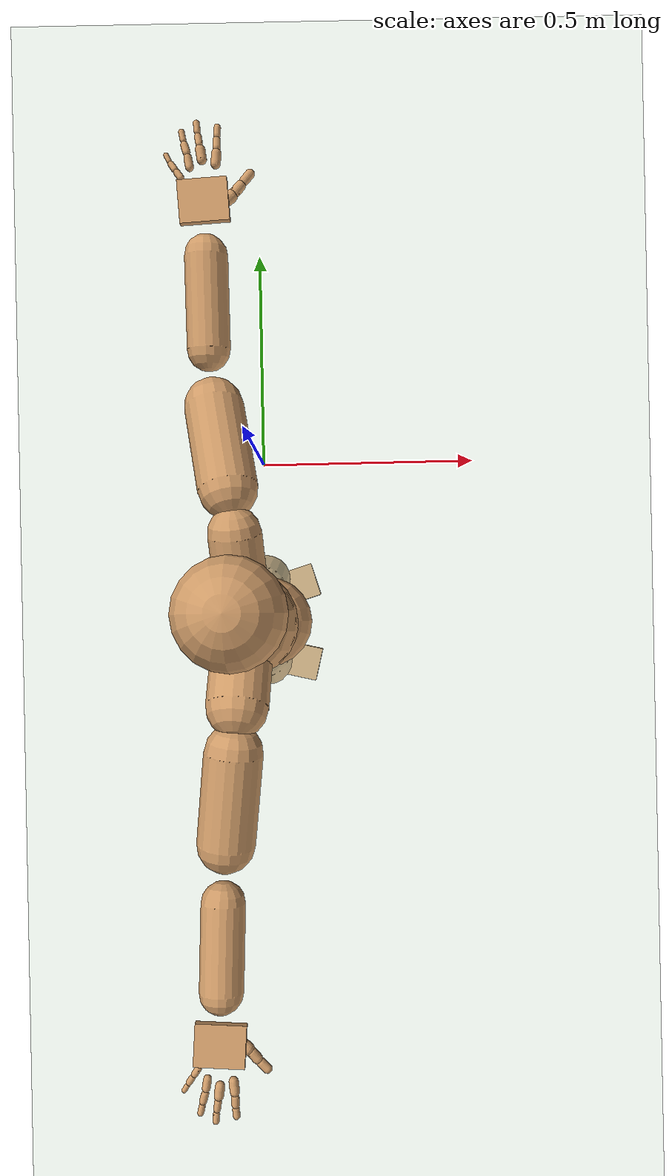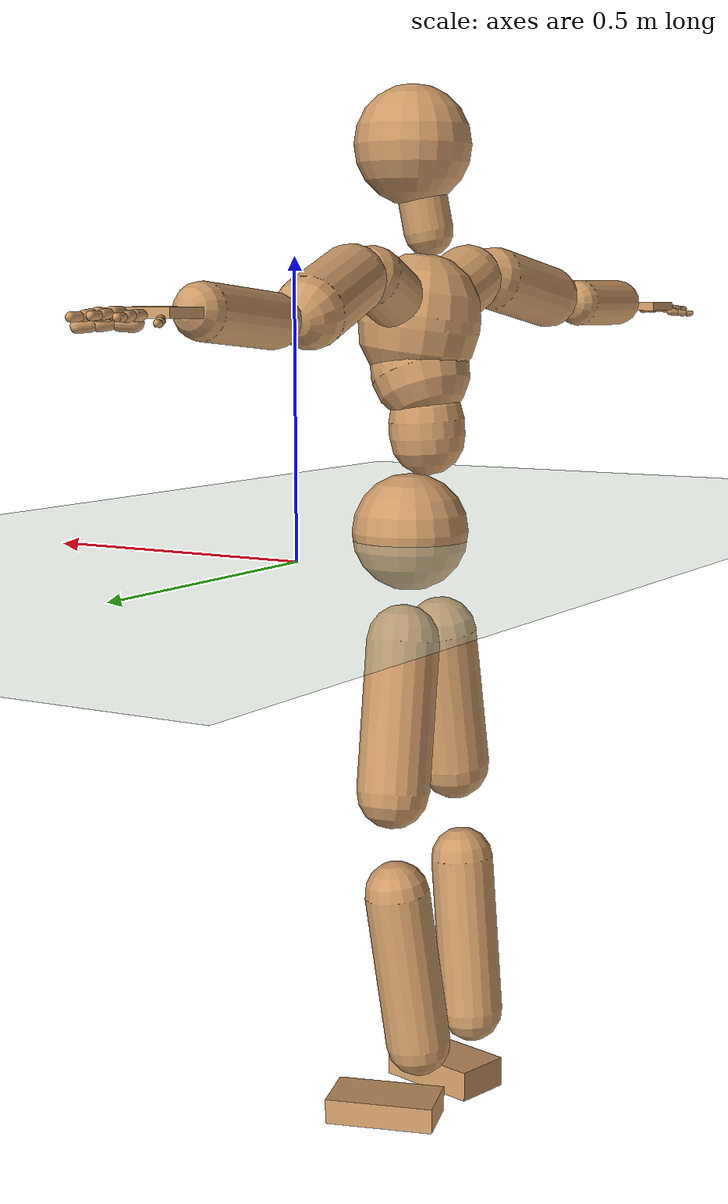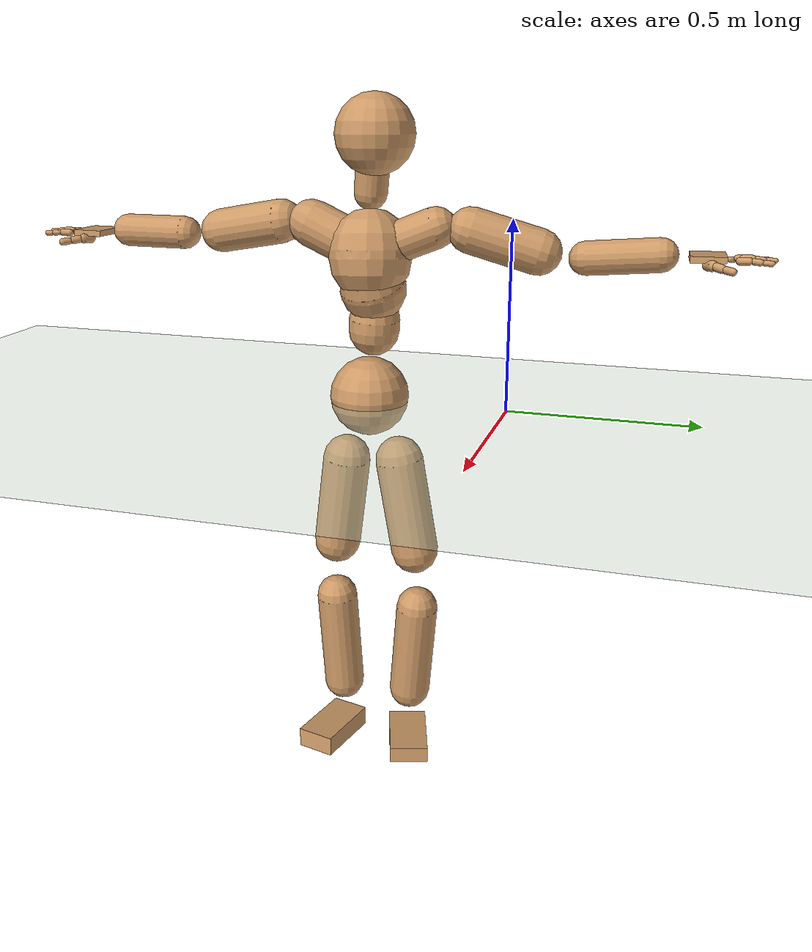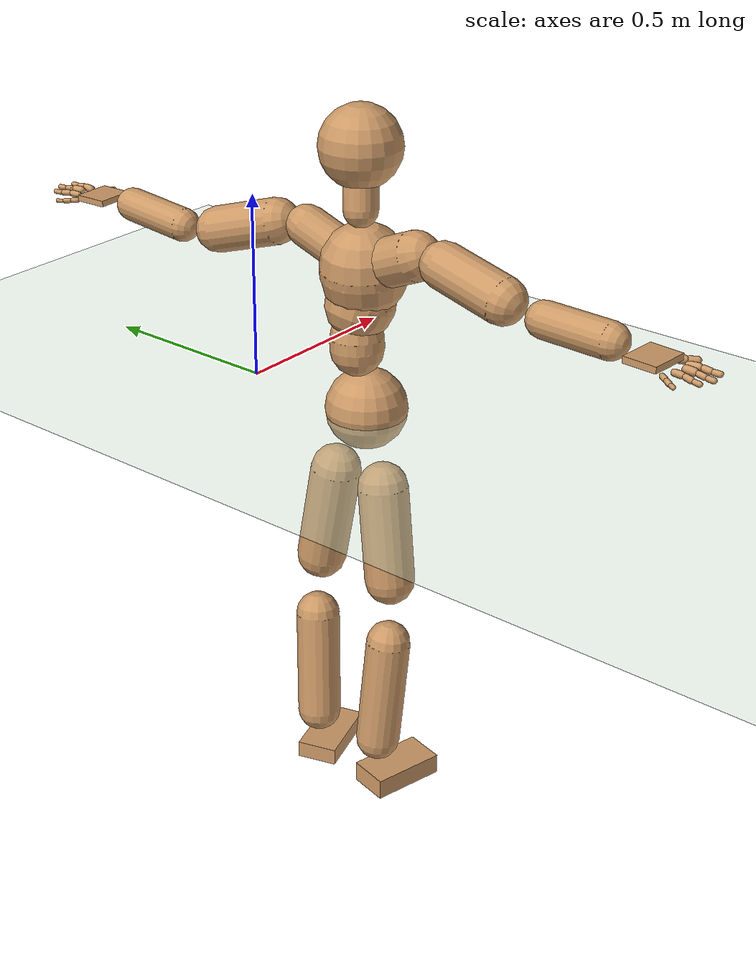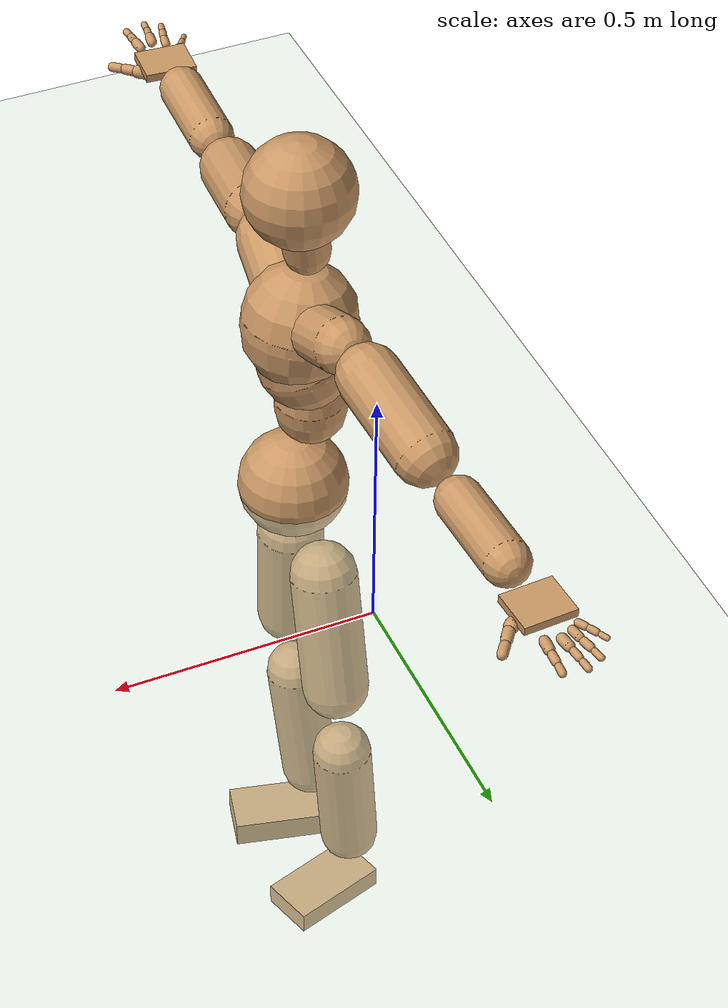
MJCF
<mujoco model="humanoid">
  <compiler coordinate="local" angle="radian"/>
  <default>
    <joint damping="0.0" armature="0.01" stiffness="0.0" limited="true"/>
    <geom conaffinity="1" condim="3" contype="7" margin="0.001" rgba="0.8 0.6 .4 1"/>
  </default>
  <asset>
    <texture type="skybox" builtin="gradient" rgb1=".4 .5 .6" rgb2="0 0 0" width="100" height="100"/>
    <texture builtin="flat" height="1278" mark="cross" markrgb="1 1 1" name="texgeom" random="0.01" rgb1="0.8 0.6 0.4" rgb2="0.8 0.6 0.4" type="cube" width="127"/>
    <texture builtin="checker" height="100" name="texplane" rgb1="0 0 0" rgb2="0.8 0.8 0.8" type="2d" width="100"/>
    <material name="MatPlane" reflectance="0.5" shininess="1" specular="1" texrepeat="60 60" texture="texplane"/>
    <material name="geom" texture="texgeom" texuniform="true"/>
  </asset>
  <worldbody>
    <light cutoff="100" diffuse="1 1 1" dir="-0 0 -1.3" directional="true" exponent="1" pos="0 0 1.3" specular=".1 .1 .1"/>
    <geom conaffinity="1" condim="3" name="floor" pos="0 0 0" rgba="0.8 0.9 0.8 1" size="100 100 .2" type="plane" material="MatPlane"/>
    <body name="Pelvis" pos="0.0011 -0.378 0.0125">
      <freejoint name="Pelvis"/>
      <geom type="sphere" contype="1" conaffinity="1" density="500" size="0.1073" pos="0.0000 0.0000 0.0000" name="Pelvis"/>
      <body name="L_Hip" pos="-0.0278 0.0618 -0.0978">
        <joint name="L_Hip_x" type="hinge" pos="0 0 0" axis="1 0 0" stiffness="800" damping="80" armature="0.02" range="-180.0000 180.0000"/>
        <joint name="L_Hip_y" type="hinge" pos="0 0 0" axis="0 1 0" stiffness="800" damping="80" armature="0.02" range="-180.0000 180.0000"/>
        <joint name="L_Hip_z" type="hinge" pos="0 0 0" axis="0 0 1" stiffness="800" damping="80" armature="0.02" range="-180.0000 180.0000"/>
        <geom type="capsule" contype="1" conaffinity="1" density="500" fromto="-0.0020 0.0152 -0.0900 -0.0082 0.0609 -0.3600" size="0.0663" name="L_Hip"/>
        <body name="L_Knee" pos="-0.0102 0.0761 -0.45">
          <joint name="L_Knee_x" type="hinge" pos="0 0 0" axis="1 0 0" stiffness="800" damping="80" armature="0.02" range="-180.0000 180.0000"/>
          <joint name="L_Knee_y" type="hinge" pos="0 0 0" axis="0 1 0" stiffness="800" damping="80" armature="0.02" range="-180.0000 180.0000"/>
          <joint name="L_Knee_z" type="hinge" pos="0 0 0" axis="0 0 1" stiffness="800" damping="80" armature="0.02" range="-180.0000 180.0000"/>
          <geom type="capsule" contype="1" conaffinity="1" density="500" fromto="-0.0098 -0.0093 -0.0961 -0.0392 -0.0373 -0.3843" size="0.0592" name="L_Knee"/>
          <body name="L_Ankle" pos="-0.049 -0.0466 -0.4803">
            <joint name="L_Ankle_x" type="hinge" pos="0 0 0" axis="1 0 0" stiffness="800" damping="80" armature="0.02" range="-180.0000 180.0000"/>
            <joint name="L_Ankle_y" type="hinge" pos="0 0 0" axis="0 1 0" stiffness="800" damping="80" armature="0.02" range="-180.0000 180.0000"/>
            <joint name="L_Ankle_z" type="hinge" pos="0 0 0" axis="0 0 1" stiffness="800" damping="80" armature="0.02" range="-180.0000 180.0000"/>
            <geom type="box" contype="1" conaffinity="1" density="500" pos="0.0733 0.0227 -0.0345" size="0.1006 0.0546 0.0232" quat="0.9888 0.0000 0.0000 0.1495" name="L_Ankle"/>
            <body name="L_Toe" pos="0.1467 0.0454 -0.0691">
              <joint name="L_Toe_x" type="hinge" pos="0 0 0" axis="1 0 0" stiffness="500" damping="50" armature="0.02" range="-180.0000 180.0000"/>
              <joint name="L_Toe_y" type="hinge" pos="0 0 0" axis="0 1 0" stiffness="500" damping="50" armature="0.02" range="-180.0000 180.0000"/>
              <joint name="L_Toe_z" type="hinge" pos="0 0 0" axis="0 0 1" stiffness="500" damping="50" armature="0.02" range="-180.0000 180.0000"/>
              <geom type="box" contype="1" conaffinity="1" density="500" pos="0.0000 0.0000 0.0336" size="0.0011 0.0026 0.0011" quat="0.9881 0.0000 0.0000 0.1537" name="L_Toe"/>
            </body>
          </body>
        </body>
      </body>
      <body name="R_Hip" pos="-0.02 -0.0635 -0.1083">
        <joint name="R_Hip_x" type="hinge" pos="0 0 0" axis="1 0 0" stiffness="800" damping="80" armature="0.02" range="-180.0000 180.0000"/>
        <joint name="R_Hip_y" type="hinge" pos="0 0 0" axis="0 1 0" stiffness="800" damping="80" armature="0.02" range="-180.0000 180.0000"/>
        <joint name="R_Hip_z" type="hinge" pos="0 0 0" axis="0 0 1" stiffness="800" damping="80" armature="0.02" range="-180.0000 180.0000"/>
        <geom type="capsule" contype="1" conaffinity="1" density="500" fromto="-0.0037 -0.0116 -0.0863 -0.0149 -0.0463 -0.3453" size="0.066" name="R_Hip"/>
        <body name="R_Knee" pos="-0.0186 -0.0579 -0.4317">
          <joint name="R_Knee_x" type="hinge" pos="0 0 0" axis="1 0 0" stiffness="800" damping="80" armature="0.02" range="-180.0000 180.0000"/>
          <joint name="R_Knee_y" type="hinge" pos="0 0 0" axis="0 1 0" stiffness="800" damping="80" armature="0.02" range="-180.0000 180.0000"/>
          <joint name="R_Knee_z" type="hinge" pos="0 0 0" axis="0 0 1" stiffness="800" damping="80" armature="0.02" range="-180.0000 180.0000"/>
          <geom type="capsule" contype="1" conaffinity="1" density="500" fromto="-0.0095 0.0033 -0.0992 -0.0381 0.0134 -0.3969" size="0.0589" name="R_Knee"/>
          <body name="R_Ankle" pos="-0.0476 0.0167 -0.4962">
            <joint name="R_Ankle_x" type="hinge" pos="0 0 0" axis="1 0 0" stiffness="800" damping="80" armature="0.02" range="-180.0000 180.0000"/>
            <joint name="R_Ankle_y" type="hinge" pos="0 0 0" axis="0 1 0" stiffness="800" damping="80" armature="0.02" range="-180.0000 180.0000"/>
            <joint name="R_Ankle_z" type="hinge" pos="0 0 0" axis="0 0 1" stiffness="800" damping="80" armature="0.02" range="-180.0000 180.0000"/>
            <geom type="box" contype="1" conaffinity="1" density="500" pos="0.0767 -0.0182 -0.0338" size="0.1006 0.0546 0.0282" quat="0.9932 0.0000 0.0000 -0.1162" name="R_Ankle"/>
            <body name="R_Toe" pos="0.1534 -0.0364 -0.0676">
              <joint name="R_Toe_x" type="hinge" pos="0 0 0" axis="1 0 0" stiffness="500" damping="50" armature="0.02" range="-180.0000 180.0000"/>
              <joint name="R_Toe_y" type="hinge" pos="0 0 0" axis="0 1 0" stiffness="500" damping="50" armature="0.02" range="-180.0000 180.0000"/>
              <joint name="R_Toe_z" type="hinge" pos="0 0 0" axis="0 0 1" stiffness="500" damping="50" armature="0.02" range="-180.0000 180.0000"/>
              <geom type="box" contype="1" conaffinity="1" density="500" pos="0.0000 0.0000 0.0279" size="0.001 0.0026 0.0011" quat="0.9941 0.0000 0.0000 -0.1086" name="R_Toe"/>
            </body>
          </body>
        </body>
      </body>
      <body name="Torso" pos="-0.039 -0.0015 0.1143">
        <joint name="Torso_x" type="hinge" pos="0 0 0" axis="1 0 0" stiffness="1000" damping="100" armature="0.02" range="-180.0000 180.0000"/>
        <joint name="Torso_y" type="hinge" pos="0 0 0" axis="0 1 0" stiffness="1000" damping="100" armature="0.02" range="-180.0000 180.0000"/>
        <joint name="Torso_z" type="hinge" pos="0 0 0" axis="0 0 1" stiffness="1000" damping="100" armature="0.02" range="-180.0000 180.0000"/>
        <geom type="capsule" contype="1" conaffinity="1" density="500" fromto="0.0038 0.0052 0.0907 0.0026 0.0035 0.0605" size="0.069" name="Torso"/>
        <body name="Spine" pos="0.0064 0.0087 0.1512">
          <joint name="Spine_x" type="hinge" pos="0 0 0" axis="1 0 0" stiffness="1000" damping="100" armature="0.02" range="-180.0000 180.0000"/>
          <joint name="Spine_y" type="hinge" pos="0 0 0" axis="0 1 0" stiffness="1000" damping="100" armature="0.02" range="-180.0000 180.0000"/>
          <joint name="Spine_z" type="hinge" pos="0 0 0" axis="0 0 1" stiffness="1000" damping="100" armature="0.02" range="-180.0000 180.0000"/>
          <geom type="capsule" contype="1" conaffinity="1" density="500" fromto="0.0135 -0.0045 0.0353 0.0090 -0.0030 0.0235" size="0.0892" name="Spine"/>
          <body name="Chest" pos="0.0226 -0.0075 0.0588">
            <joint name="Chest_x" type="hinge" pos="0 0 0" axis="1 0 0" stiffness="1000" damping="100" armature="0.02" range="-180.0000 180.0000"/>
            <joint name="Chest_y" type="hinge" pos="0 0 0" axis="0 1 0" stiffness="1000" damping="100" armature="0.02" range="-180.0000 180.0000"/>
            <joint name="Chest_z" type="hinge" pos="0 0 0" axis="0 0 1" stiffness="1000" damping="100" armature="0.02" range="-180.0000 180.0000"/>
            <geom type="capsule" contype="1" conaffinity="1" density="500" fromto="-0.0084 -0.0026 0.0679 -0.0056 -0.0017 0.0453" size="0.1105" name="Chest"/>
            <body name="Neck" pos="-0.0285 -0.0099 0.1773">
              <joint name="Neck_x" type="hinge" pos="0 0 0" axis="1 0 0" stiffness="500" damping="50" armature="0.02" range="-180.0000 180.0000"/>
              <joint name="Neck_y" type="hinge" pos="0 0 0" axis="0 1 0" stiffness="500" damping="50" armature="0.02" range="-180.0000 180.0000"/>
              <joint name="Neck_z" type="hinge" pos="0 0 0" axis="0 0 1" stiffness="500" damping="50" armature="0.02" range="-180.0000 180.0000"/>
              <geom type="capsule" contype="1" conaffinity="1" density="500" fromto="0.0054 0.0046 0.0372 0.0214 0.0185 0.1489" size="0.0443" name="Neck"/>
              <body name="Head" pos="0.0268 0.0231 0.1861">
                <joint name="Head_x" type="hinge" pos="0 0 0" axis="1 0 0" stiffness="500" damping="50" armature="0.02" range="-180.0000 180.0000"/>
                <joint name="Head_y" type="hinge" pos="0 0 0" axis="0 1 0" stiffness="500" damping="50" armature="0.02" range="-180.0000 180.0000"/>
                <joint name="Head_z" type="hinge" pos="0 0 0" axis="0 0 1" stiffness="500" damping="50" armature="0.02" range="-180.0000 180.0000"/>
                <geom type="sphere" contype="1" conaffinity="1" density="500" size="0.1050" pos="0.0000 0.0000 0.0000" name="Head"/>
              </body>
            </body>
            <body name="L_Thorax" pos="-0.0052 0.0463 0.0812">
              <joint name="L_Thorax_x" type="hinge" pos="0 0 0" axis="1 0 0" stiffness="500" damping="50" armature="0.02" range="-180.0000 180.0000"/>
              <joint name="L_Thorax_y" type="hinge" pos="0 0 0" axis="0 1 0" stiffness="500" damping="50" armature="0.02" range="-180.0000 180.0000"/>
              <joint name="L_Thorax_z" type="hinge" pos="0 0 0" axis="0 0 1" stiffness="500" damping="50" armature="0.02" range="-180.0000 180.0000"/>
              <geom type="capsule" contype="1" conaffinity="1" density="500" fromto="-0.0022 0.0318 0.0127 -0.0089 0.1271 0.0510" size="0.0542" name="L_Thorax"/>
              <body name="L_Shoulder" pos="-0.0111 0.1589 0.0637">
                <joint name="L_Shoulder_x" type="hinge" pos="0 0 0" axis="1 0 0" stiffness="500" damping="50" armature="0.02" range="-180.0000 180.0000"/>
                <joint name="L_Shoulder_y" type="hinge" pos="0 0 0" axis="0 1 0" stiffness="500" damping="50" armature="0.02" range="-180.0000 180.0000"/>
                <joint name="L_Shoulder_z" type="hinge" pos="0 0 0" axis="0 0 1" stiffness="500" damping="50" armature="0.02" range="-180.0000 180.0000"/>
                <geom type="capsule" contype="1" conaffinity="1" density="500" fromto="-0.0101 0.0577 -0.0175 -0.0404 0.2307 -0.0699" size="0.06" name="L_Shoulder"/>
                <body name="L_Elbow" pos="-0.0505 0.2883 -0.0874">
                  <joint name="L_Elbow_x" type="hinge" pos="0 0 0" axis="1 0 0" stiffness="500" damping="50" armature="0.02" range="-720.0000 720.0000"/>
                  <joint name="L_Elbow_y" type="hinge" pos="0 0 0" axis="0 1 0" stiffness="500" damping="50" armature="0.02" range="-720.0000 720.0000"/>
                  <joint name="L_Elbow_z" type="hinge" pos="0 0 0" axis="0 0 1" stiffness="500" damping="50" armature="0.02" range="-720.0000 720.0000"/>
                  <geom type="capsule" contype="1" conaffinity="1" density="500" fromto="0.0000 0.0614 0.0053 0.0001 0.2455 0.0210" size="0.0441" name="L_Elbow"/>
                  <body name="L_Wrist" pos="0.0001 0.3068 0.0263">
                    <joint name="L_Wrist_x" type="hinge" pos="0 0 0" axis="1 0 0" stiffness="300" damping="30" armature="0.02" range="-180.0000 180.0000"/>
                    <joint name="L_Wrist_y" type="hinge" pos="0 0 0" axis="0 1 0" stiffness="300" damping="30" armature="0.02" range="-180.0000 180.0000"/>
                    <joint name="L_Wrist_z" type="hinge" pos="0 0 0" axis="0 0 1" stiffness="300" damping="30" armature="0.02" range="-180.0000 180.0000"/>
                    <geom type="box" contype="1" conaffinity="1" density="500" pos="-0.0031 0.0511 -0.0062" size="0.0438 0.0506 0.0081" quat="0.7282 0.0000 0.0000 -0.6854" name="L_Wrist"/>
                    <body name="L_Index1" pos="0.0215 0.1193 -0.0093">
                      <joint name="L_Index1_x" type="hinge" pos="0 0 0" axis="1 0 0" stiffness="100" damping="10" armature="0.02" range="-180.0000 180.0000"/>
                      <joint name="L_Index1_y" type="hinge" pos="0 0 0" axis="0 1 0" stiffness="100" damping="10" armature="0.02" range="-180.0000 180.0000"/>
                      <joint name="L_Index1_z" type="hinge" pos="0 0 0" axis="0 0 1" stiffness="100" damping="10" armature="0.02" range="-180.0000 180.0000"/>
                      <geom type="capsule" contype="1" conaffinity="1" density="500" fromto="0.0008 0.0071 0.0003 0.0030 0.0282 0.0013" size="0.0098" name="L_Index1"/>
                      <body name="L_Index2" pos="0.0038 0.0353 0.0016">
                        <joint name="L_Index2_x" type="hinge" pos="0 0 0" axis="1 0 0" stiffness="100" damping="10" armature="0.02" range="-180.0000 180.0000"/>
                        <joint name="L_Index2_y" type="hinge" pos="0 0 0" axis="0 1 0" stiffness="100" damping="10" armature="0.02" range="-180.0000 180.0000"/>
                        <joint name="L_Index2_z" type="hinge" pos="0 0 0" axis="0 0 1" stiffness="100" damping="10" armature="0.02" range="-180.0000 180.0000"/>
                        <geom type="capsule" contype="1" conaffinity="1" density="500" fromto="0.0000 0.0050 -0.0006 0.0001 0.0199 -0.0023" size="0.0081" name="L_Index2"/>
                        <body name="L_Index3" pos="0.0001 0.0249 -0.0029">
                          <joint name="L_Index3_x" type="hinge" pos="0 0 0" axis="1 0 0" stiffness="100" damping="10" armature="0.02" range="-180.0000 180.0000"/>
                          <joint name="L_Index3_y" type="hinge" pos="0 0 0" axis="0 1 0" stiffness="100" damping="10" armature="0.02" range="-180.0000 180.0000"/>
                          <joint name="L_Index3_z" type="hinge" pos="0 0 0" axis="0 0 1" stiffness="100" damping="10" armature="0.02" range="-180.0000 180.0000"/>
                          <geom type="capsule" contype="1" conaffinity="1" density="500" fromto="0.0004 0.0054 -0.0002 0.0017 0.0215 -0.0007" size="0.007" name="L_Index3"/>
                        </body>
                      </body>
                    </body>
                    <body name="L_Middle1" pos="-0.004 0.1279 -0.0065">
                      <joint name="L_Middle1_x" type="hinge" pos="0 0 0" axis="1 0 0" stiffness="100" damping="10" armature="0.02" range="-180.0000 180.0000"/>
                      <joint name="L_Middle1_y" type="hinge" pos="0 0 0" axis="0 1 0" stiffness="100" damping="10" armature="0.02" range="-180.0000 180.0000"/>
                      <joint name="L_Middle1_z" type="hinge" pos="0 0 0" axis="0 0 1" stiffness="100" damping="10" armature="0.02" range="-180.0000 180.0000"/>
                      <geom type="capsule" contype="1" conaffinity="1" density="500" fromto="-0.0009 0.0067 0.0001 -0.0037 0.0269 0.0002" size="0.0099" name="L_Middle1"/>
                      <body name="L_Middle2" pos="-0.0046 0.0336 0.0003">
                        <joint name="L_Middle2_x" type="hinge" pos="0 0 0" axis="1 0 0" stiffness="100" damping="10" armature="0.02" range="-180.0000 180.0000"/>
                        <joint name="L_Middle2_y" type="hinge" pos="0 0 0" axis="0 1 0" stiffness="100" damping="10" armature="0.02" range="-180.0000 180.0000"/>
                        <joint name="L_Middle2_z" type="hinge" pos="0 0 0" axis="0 0 1" stiffness="100" damping="10" armature="0.02" range="-180.0000 180.0000"/>
                        <geom type="capsule" contype="1" conaffinity="1" density="500" fromto="-0.0009 0.0052 -0.0005 -0.0035 0.0206 -0.0021" size="0.0073" name="L_Middle2"/>
                        <body name="L_Middle3" pos="-0.0044 0.0258 -0.0027">
                          <joint name="L_Middle3_x" type="hinge" pos="0 0 0" axis="1 0 0" stiffness="100" damping="10" armature="0.02" range="-180.0000 180.0000"/>
                          <joint name="L_Middle3_y" type="hinge" pos="0 0 0" axis="0 1 0" stiffness="100" damping="10" armature="0.02" range="-180.0000 180.0000"/>
                          <joint name="L_Middle3_z" type="hinge" pos="0 0 0" axis="0 0 1" stiffness="100" damping="10" armature="0.02" range="-180.0000 180.0000"/>
                          <geom type="capsule" contype="1" conaffinity="1" density="500" fromto="-0.0005 0.0056 -0.0001 -0.0019 0.0222 -0.0005" size="0.0066" name="L_Middle3"/>
                        </body>
                      </body>
                    </body>
                    <body name="L_Pinky1" pos="-0.0474 0.0999 -0.0155">
                      <joint name="L_Pinky1_x" type="hinge" pos="0 0 0" axis="1 0 0" stiffness="100" damping="10" armature="0.02" range="-180.0000 180.0000"/>
                      <joint name="L_Pinky1_y" type="hinge" pos="0 0 0" axis="0 1 0" stiffness="100" damping="10" armature="0.02" range="-180.0000 180.0000"/>
                      <joint name="L_Pinky1_z" type="hinge" pos="0 0 0" axis="0 0 1" stiffness="100" damping="10" armature="0.02" range="-180.0000 180.0000"/>
                      <geom type="capsule" contype="1" conaffinity="1" density="500" fromto="-0.0025 0.0036 -0.0004 -0.0099 0.0142 -0.0016" size="0.0071" name="L_Pinky1"/>
                      <body name="L_Pinky2" pos="-0.0124 0.0178 -0.0019">
                        <joint name="L_Pinky2_x" type="hinge" pos="0 0 0" axis="1 0 0" stiffness="100" damping="10" armature="0.02" range="-180.0000 180.0000"/>
                        <joint name="L_Pinky2_y" type="hinge" pos="0 0 0" axis="0 1 0" stiffness="100" damping="10" armature="0.02" range="-180.0000 180.0000"/>
                        <joint name="L_Pinky2_z" type="hinge" pos="0 0 0" axis="0 0 1" stiffness="100" damping="10" armature="0.02" range="-180.0000 180.0000"/>
                        <geom type="capsule" contype="1" conaffinity="1" density="500" fromto="-0.0023 0.0035 -0.0004 -0.0093 0.0139 -0.0017" size="0.0067" name="L_Pinky2"/>
                        <body name="L_Pinky3" pos="-0.0117 0.0174 -0.0022">
                          <joint name="L_Pinky3_x" type="hinge" pos="0 0 0" axis="1 0 0" stiffness="100" damping="10" armature="0.02" range="-180.0000 180.0000"/>
                          <joint name="L_Pinky3_y" type="hinge" pos="0 0 0" axis="0 1 0" stiffness="100" damping="10" armature="0.02" range="-180.0000 180.0000"/>
                          <joint name="L_Pinky3_z" type="hinge" pos="0 0 0" axis="0 0 1" stiffness="100" damping="10" armature="0.02" range="-180.0000 180.0000"/>
                          <geom type="capsule" contype="1" conaffinity="1" density="500" fromto="-0.0019 0.0039 -0.0000 -0.0077 0.0155 -0.0001" size="0.0052" name="L_Pinky3"/>
                        </body>
                      </body>
                    </body>
                    <body name="L_Ring1" pos="-0.0294 0.1148 -0.0096">
                      <joint name="L_Ring1_x" type="hinge" pos="0 0 0" axis="1 0 0" stiffness="100" damping="10" armature="0.02" range="-180.0000 180.0000"/>
                      <joint name="L_Ring1_y" type="hinge" pos="0 0 0" axis="0 1 0" stiffness="100" damping="10" armature="0.02" range="-180.0000 180.0000"/>
                      <joint name="L_Ring1_z" type="hinge" pos="0 0 0" axis="0 0 1" stiffness="100" damping="10" armature="0.02" range="-180.0000 180.0000"/>
                      <geom type="capsule" contype="1" conaffinity="1" density="500" fromto="-0.0010 0.0063 0.0001 -0.0041 0.0251 0.0006" size="0.0084" name="L_Ring1"/>
                      <body name="L_Ring2" pos="-0.0052 0.0314 0.0007">
                        <joint name="L_Ring2_x" type="hinge" pos="0 0 0" axis="1 0 0" stiffness="100" damping="10" armature="0.02" range="-180.0000 180.0000"/>
                        <joint name="L_Ring2_y" type="hinge" pos="0 0 0" axis="0 1 0" stiffness="100" damping="10" armature="0.02" range="-180.0000 180.0000"/>
                        <joint name="L_Ring2_z" type="hinge" pos="0 0 0" axis="0 0 1" stiffness="100" damping="10" armature="0.02" range="-180.0000 180.0000"/>
                        <geom type="capsule" contype="1" conaffinity="1" density="500" fromto="-0.0014 0.0051 -0.0005 -0.0057 0.0203 -0.0019" size="0.0078" name="L_Ring2"/>
                        <body name="L_Ring3" pos="-0.0071 0.0254 -0.0023">
                          <joint name="L_Ring3_x" type="hinge" pos="0 0 0" axis="1 0 0" stiffness="100" damping="10" armature="0.02" range="-180.0000 180.0000"/>
                          <joint name="L_Ring3_y" type="hinge" pos="0 0 0" axis="0 1 0" stiffness="100" damping="10" armature="0.02" range="-180.0000 180.0000"/>
                          <joint name="L_Ring3_z" type="hinge" pos="0 0 0" axis="0 0 1" stiffness="100" damping="10" armature="0.02" range="-180.0000 180.0000"/>
                          <geom type="capsule" contype="1" conaffinity="1" density="500" fromto="-0.0010 0.0055 -0.0001 -0.0041 0.0219 -0.0003" size="0.0062" name="L_Ring3"/>
                        </body>
                      </body>
                    </body>
                    <body name="L_Thumb1" pos="0.0283 0.0494 -0.0211">
                      <joint name="L_Thumb1_x" type="hinge" pos="0 0 0" axis="1 0 0" stiffness="100" damping="10" armature="0.02" range="-180.0000 180.0000"/>
                      <joint name="L_Thumb1_y" type="hinge" pos="0 0 0" axis="0 1 0" stiffness="100" damping="10" armature="0.02" range="-180.0000 180.0000"/>
                      <joint name="L_Thumb1_z" type="hinge" pos="0 0 0" axis="0 0 1" stiffness="100" damping="10" armature="0.02" range="-180.0000 180.0000"/>
                      <geom type="capsule" contype="1" conaffinity="1" density="500" fromto="0.0057 0.0039 0.0004 0.0227 0.0155 0.0015" size="0.0136" name="L_Thumb1"/>
                      <body name="L_Thumb2" pos="0.0283 0.0194 0.0019">
                        <joint name="L_Thumb2_x" type="hinge" pos="0 0 0" axis="1 0 0" stiffness="100" damping="10" armature="0.02" range="-180.0000 180.0000"/>
                        <joint name="L_Thumb2_y" type="hinge" pos="0 0 0" axis="0 1 0" stiffness="100" damping="10" armature="0.02" range="-180.0000 180.0000"/>
                        <joint name="L_Thumb2_z" type="hinge" pos="0 0 0" axis="0 0 1" stiffness="100" damping="10" armature="0.02" range="-180.0000 180.0000"/>
                        <geom type="capsule" contype="1" conaffinity="1" density="500" fromto="0.0035 0.0046 -0.0009 0.0141 0.0186 -0.0036" size="0.0107" name="L_Thumb2"/>
                        <body name="L_Thumb3" pos="0.0177 0.0232 -0.0045">
                          <joint name="L_Thumb3_x" type="hinge" pos="0 0 0" axis="1 0 0" stiffness="100" damping="10" armature="0.02" range="-180.0000 180.0000"/>
                          <joint name="L_Thumb3_y" type="hinge" pos="0 0 0" axis="0 1 0" stiffness="100" damping="10" armature="0.02" range="-180.0000 180.0000"/>
                          <joint name="L_Thumb3_z" type="hinge" pos="0 0 0" axis="0 0 1" stiffness="100" damping="10" armature="0.02" range="-180.0000 180.0000"/>
                          <geom type="capsule" contype="1" conaffinity="1" density="500" fromto="0.0039 0.0050 -0.0005 0.0157 0.0202 -0.0020" size="0.0096" name="L_Thumb3"/>
                        </body>
                      </body>
                    </body>
                  </body>
                </body>
              </body>
            </body>
            <body name="R_Thorax" pos="-0.0085 -0.0494 0.081">
              <joint name="R_Thorax_x" type="hinge" pos="0 0 0" axis="1 0 0" stiffness="500" damping="50" armature="0.02" range="-180.0000 180.0000"/>
              <joint name="R_Thorax_y" type="hinge" pos="0 0 0" axis="0 1 0" stiffness="500" damping="50" armature="0.02" range="-180.0000 180.0000"/>
              <joint name="R_Thorax_z" type="hinge" pos="0 0 0" axis="0 0 1" stiffness="500" damping="50" armature="0.02" range="-180.0000 180.0000"/>
              <geom type="capsule" contype="1" conaffinity="1" density="500" fromto="-0.0017 -0.0293 0.0128 -0.0070 -0.1174 0.0511" size="0.0631" name="R_Thorax"/>
              <body name="R_Shoulder" pos="-0.0087 -0.1467 0.0638">
                <joint name="R_Shoulder_x" type="hinge" pos="0 0 0" axis="1 0 0" stiffness="500" damping="50" armature="0.02" range="-180.0000 180.0000"/>
                <joint name="R_Shoulder_y" type="hinge" pos="0 0 0" axis="0 1 0" stiffness="500" damping="50" armature="0.02" range="-180.0000 180.0000"/>
                <joint name="R_Shoulder_z" type="hinge" pos="0 0 0" axis="0 0 1" stiffness="500" damping="50" armature="0.02" range="-180.0000 180.0000"/>
                <geom type="capsule" contype="1" conaffinity="1" density="500" fromto="-0.0074 -0.0619 -0.0114 -0.0295 -0.2475 -0.0456" size="0.0591" name="R_Shoulder"/>
                <body name="R_Elbow" pos="-0.0369 -0.3094 -0.057">
                  <joint name="R_Elbow_x" type="hinge" pos="0 0 0" axis="1 0 0" stiffness="500" damping="50" armature="0.02" range="-720.0000 720.0000"/>
                  <joint name="R_Elbow_y" type="hinge" pos="0 0 0" axis="0 1 0" stiffness="500" damping="50" armature="0.02" range="-720.0000 720.0000"/>
                  <joint name="R_Elbow_z" type="hinge" pos="0 0 0" axis="0 0 1" stiffness="500" damping="50" armature="0.02" range="-720.0000 720.0000"/>
                  <geom type="capsule" contype="1" conaffinity="1" density="500" fromto="-0.0024 -0.0594 -0.0001 -0.0095 -0.2375 -0.0003" size="0.0453" name="R_Elbow"/>
                  <body name="R_Wrist" pos="-0.0119 -0.2969 -0.0004">
                    <joint name="R_Wrist_x" type="hinge" pos="0 0 0" axis="1 0 0" stiffness="300" damping="30" armature="0.02" range="-180.0000 180.0000"/>
                    <joint name="R_Wrist_y" type="hinge" pos="0 0 0" axis="0 1 0" stiffness="300" damping="30" armature="0.02" range="-180.0000 180.0000"/>
                    <joint name="R_Wrist_z" type="hinge" pos="0 0 0" axis="0 0 1" stiffness="300" damping="30" armature="0.02" range="-180.0000 180.0000"/>
                    <geom type="box" contype="1" conaffinity="1" density="500" pos="-0.0034 -0.0508 -0.0081" size="0.0438 0.0522 0.0083" quat="0.7306 0.0000 0.0000 0.6828" name="R_Wrist"/>
                    <body name="R_Index1" pos="0.0208 -0.1188 -0.013">
                      <joint name="R_Index1_x" type="hinge" pos="0 0 0" axis="1 0 0" stiffness="100" damping="10" armature="0.02" range="-180.0000 180.0000"/>
                      <joint name="R_Index1_y" type="hinge" pos="0 0 0" axis="0 1 0" stiffness="100" damping="10" armature="0.02" range="-180.0000 180.0000"/>
                      <joint name="R_Index1_z" type="hinge" pos="0 0 0" axis="0 0 1" stiffness="100" damping="10" armature="0.02" range="-180.0000 180.0000"/>
                      <geom type="capsule" contype="1" conaffinity="1" density="500" fromto="0.0008 -0.0071 0.0003 0.0030 -0.0282 0.0013" size="0.0098" name="R_Index1"/>
                      <body name="R_Index2" pos="0.0038 -0.0353 0.0016">
                        <joint name="R_Index2_x" type="hinge" pos="0 0 0" axis="1 0 0" stiffness="100" damping="10" armature="0.02" range="-180.0000 180.0000"/>
                        <joint name="R_Index2_y" type="hinge" pos="0 0 0" axis="0 1 0" stiffness="100" damping="10" armature="0.02" range="-180.0000 180.0000"/>
                        <joint name="R_Index2_z" type="hinge" pos="0 0 0" axis="0 0 1" stiffness="100" damping="10" armature="0.02" range="-180.0000 180.0000"/>
                        <geom type="capsule" contype="1" conaffinity="1" density="500" fromto="0.0000 -0.0050 -0.0006 0.0001 -0.0199 -0.0023" size="0.0081" name="R_Index2"/>
                        <body name="R_Index3" pos="0.0001 -0.0249 -0.0029">
                          <joint name="R_Index3_x" type="hinge" pos="0 0 0" axis="1 0 0" stiffness="100" damping="10" armature="0.02" range="-180.0000 180.0000"/>
                          <joint name="R_Index3_y" type="hinge" pos="0 0 0" axis="0 1 0" stiffness="100" damping="10" armature="0.02" range="-180.0000 180.0000"/>
                          <joint name="R_Index3_z" type="hinge" pos="0 0 0" axis="0 0 1" stiffness="100" damping="10" armature="0.02" range="-180.0000 180.0000"/>
                          <geom type="capsule" contype="1" conaffinity="1" density="500" fromto="0.0004 -0.0046 -0.0002 0.0017 -0.0183 -0.0007" size="0.0073" name="R_Index3"/>
                        </body>
                      </body>
                    </body>
                    <body name="R_Middle1" pos="-0.0047 -0.1273 -0.0102">
                      <joint name="R_Middle1_x" type="hinge" pos="0 0 0" axis="1 0 0" stiffness="100" damping="10" armature="0.02" range="-180.0000 180.0000"/>
                      <joint name="R_Middle1_y" type="hinge" pos="0 0 0" axis="0 1 0" stiffness="100" damping="10" armature="0.02" range="-180.0000 180.0000"/>
                      <joint name="R_Middle1_z" type="hinge" pos="0 0 0" axis="0 0 1" stiffness="100" damping="10" armature="0.02" range="-180.0000 180.0000"/>
                      <geom type="capsule" contype="1" conaffinity="1" density="500" fromto="-0.0009 -0.0067 0.0001 -0.0037 -0.0269 0.0002" size="0.0099" name="R_Middle1"/>
                      <body name="R_Middle2" pos="-0.0046 -0.0336 0.0003">
                        <joint name="R_Middle2_x" type="hinge" pos="0 0 0" axis="1 0 0" stiffness="100" damping="10" armature="0.02" range="-180.0000 180.0000"/>
                        <joint name="R_Middle2_y" type="hinge" pos="0 0 0" axis="0 1 0" stiffness="100" damping="10" armature="0.02" range="-180.0000 180.0000"/>
                        <joint name="R_Middle2_z" type="hinge" pos="0 0 0" axis="0 0 1" stiffness="100" damping="10" armature="0.02" range="-180.0000 180.0000"/>
                        <geom type="capsule" contype="1" conaffinity="1" density="500" fromto="-0.0009 -0.0052 -0.0005 -0.0035 -0.0206 -0.0021" size="0.0073" name="R_Middle2"/>
                        <body name="R_Middle3" pos="-0.0044 -0.0258 -0.0027">
                          <joint name="R_Middle3_x" type="hinge" pos="0 0 0" axis="1 0 0" stiffness="100" damping="10" armature="0.02" range="-180.0000 180.0000"/>
                          <joint name="R_Middle3_y" type="hinge" pos="0 0 0" axis="0 1 0" stiffness="100" damping="10" armature="0.02" range="-180.0000 180.0000"/>
                          <joint name="R_Middle3_z" type="hinge" pos="0 0 0" axis="0 0 1" stiffness="100" damping="10" armature="0.02" range="-180.0000 180.0000"/>
                          <geom type="capsule" contype="1" conaffinity="1" density="500" fromto="-0.0005 -0.0048 -0.0001 -0.0019 -0.0190 -0.0005" size="0.0069" name="R_Middle3"/>
                        </body>
                      </body>
                    </body>
                    <body name="R_Pinky1" pos="-0.0481 -0.0993 -0.0192">
                      <joint name="R_Pinky1_x" type="hinge" pos="0 0 0" axis="1 0 0" stiffness="100" damping="10" armature="0.02" range="-180.0000 180.0000"/>
                      <joint name="R_Pinky1_y" type="hinge" pos="0 0 0" axis="0 1 0" stiffness="100" damping="10" armature="0.02" range="-180.0000 180.0000"/>
                      <joint name="R_Pinky1_z" type="hinge" pos="0 0 0" axis="0 0 1" stiffness="100" damping="10" armature="0.02" range="-180.0000 180.0000"/>
                      <geom type="capsule" contype="1" conaffinity="1" density="500" fromto="-0.0025 -0.0036 -0.0004 -0.0099 -0.0142 -0.0016" size="0.0071" name="R_Pinky1"/>
                      <body name="R_Pinky2" pos="-0.0124 -0.0178 -0.0019">
                        <joint name="R_Pinky2_x" type="hinge" pos="0 0 0" axis="1 0 0" stiffness="100" damping="10" armature="0.02" range="-180.0000 180.0000"/>
                        <joint name="R_Pinky2_y" type="hinge" pos="0 0 0" axis="0 1 0" stiffness="100" damping="10" armature="0.02" range="-180.0000 180.0000"/>
                        <joint name="R_Pinky2_z" type="hinge" pos="0 0 0" axis="0 0 1" stiffness="100" damping="10" armature="0.02" range="-180.0000 180.0000"/>
                        <geom type="capsule" contype="1" conaffinity="1" density="500" fromto="-0.0023 -0.0035 -0.0004 -0.0093 -0.0139 -0.0017" size="0.0067" name="R_Pinky2"/>
                        <body name="R_Pinky3" pos="-0.0117 -0.0174 -0.0022">
                          <joint name="R_Pinky3_x" type="hinge" pos="0 0 0" axis="1 0 0" stiffness="100" damping="10" armature="0.02" range="-180.0000 180.0000"/>
                          <joint name="R_Pinky3_y" type="hinge" pos="0 0 0" axis="0 1 0" stiffness="100" damping="10" armature="0.02" range="-180.0000 180.0000"/>
                          <joint name="R_Pinky3_z" type="hinge" pos="0 0 0" axis="0 0 1" stiffness="100" damping="10" armature="0.02" range="-180.0000 180.0000"/>
                          <geom type="capsule" contype="1" conaffinity="1" density="500" fromto="-0.0019 -0.0031 -0.0000 -0.0077 -0.0123 -0.0001" size="0.0055" name="R_Pinky3"/>
                        </body>
                      </body>
                    </body>
                    <body name="R_Ring1" pos="-0.03 -0.1142 -0.0133">
                      <joint name="R_Ring1_x" type="hinge" pos="0 0 0" axis="1 0 0" stiffness="100" damping="10" armature="0.02" range="-180.0000 180.0000"/>
                      <joint name="R_Ring1_y" type="hinge" pos="0 0 0" axis="0 1 0" stiffness="100" damping="10" armature="0.02" range="-180.0000 180.0000"/>
                      <joint name="R_Ring1_z" type="hinge" pos="0 0 0" axis="0 0 1" stiffness="100" damping="10" armature="0.02" range="-180.0000 180.0000"/>
                      <geom type="capsule" contype="1" conaffinity="1" density="500" fromto="-0.0010 -0.0063 0.0001 -0.0041 -0.0251 0.0006" size="0.0084" name="R_Ring1"/>
                      <body name="R_Ring2" pos="-0.0052 -0.0314 0.0007">
                        <joint name="R_Ring2_x" type="hinge" pos="0 0 0" axis="1 0 0" stiffness="100" damping="10" armature="0.02" range="-180.0000 180.0000"/>
                        <joint name="R_Ring2_y" type="hinge" pos="0 0 0" axis="0 1 0" stiffness="100" damping="10" armature="0.02" range="-180.0000 180.0000"/>
                        <joint name="R_Ring2_z" type="hinge" pos="0 0 0" axis="0 0 1" stiffness="100" damping="10" armature="0.02" range="-180.0000 180.0000"/>
                        <geom type="capsule" contype="1" conaffinity="1" density="500" fromto="-0.0014 -0.0051 -0.0005 -0.0057 -0.0203 -0.0019" size="0.0078" name="R_Ring2"/>
                        <body name="R_Ring3" pos="-0.0071 -0.0254 -0.0023">
                          <joint name="R_Ring3_x" type="hinge" pos="0 0 0" axis="1 0 0" stiffness="100" damping="10" armature="0.02" range="-180.0000 180.0000"/>
                          <joint name="R_Ring3_y" type="hinge" pos="0 0 0" axis="0 1 0" stiffness="100" damping="10" armature="0.02" range="-180.0000 180.0000"/>
                          <joint name="R_Ring3_z" type="hinge" pos="0 0 0" axis="0 0 1" stiffness="100" damping="10" armature="0.02" range="-180.0000 180.0000"/>
                          <geom type="capsule" contype="1" conaffinity="1" density="500" fromto="-0.0010 -0.0047 -0.0001 -0.0041 -0.0187 -0.0003" size="0.0065" name="R_Ring3"/>
                        </body>
                      </body>
                    </body>
                    <body name="R_Thumb1" pos="0.0276 -0.0488 -0.0248">
                      <joint name="R_Thumb1_x" type="hinge" pos="0 0 0" axis="1 0 0" stiffness="100" damping="10" armature="0.02" range="-180.0000 180.0000"/>
                      <joint name="R_Thumb1_y" type="hinge" pos="0 0 0" axis="0 1 0" stiffness="100" damping="10" armature="0.02" range="-180.0000 180.0000"/>
                      <joint name="R_Thumb1_z" type="hinge" pos="0 0 0" axis="0 0 1" stiffness="100" damping="10" armature="0.02" range="-180.0000 180.0000"/>
                      <geom type="capsule" contype="1" conaffinity="1" density="500" fromto="0.0057 -0.0039 0.0004 0.0227 -0.0155 0.0015" size="0.0136" name="R_Thumb1"/>
                      <body name="R_Thumb2" pos="0.0283 -0.0194 0.0019">
                        <joint name="R_Thumb2_x" type="hinge" pos="0 0 0" axis="1 0 0" stiffness="100" damping="10" armature="0.02" range="-180.0000 180.0000"/>
                        <joint name="R_Thumb2_y" type="hinge" pos="0 0 0" axis="0 1 0" stiffness="100" damping="10" armature="0.02" range="-180.0000 180.0000"/>
                        <joint name="R_Thumb2_z" type="hinge" pos="0 0 0" axis="0 0 1" stiffness="100" damping="10" armature="0.02" range="-180.0000 180.0000"/>
                        <geom type="capsule" contype="1" conaffinity="1" density="500" fromto="0.0035 -0.0046 -0.0009 0.0141 -0.0186 -0.0036" size="0.0107" name="R_Thumb2"/>
                        <body name="R_Thumb3" pos="0.0177 -0.0232 -0.0045">
                          <joint name="R_Thumb3_x" type="hinge" pos="0 0 0" axis="1 0 0" stiffness="100" damping="10" armature="0.02" range="-180.0000 180.0000"/>
                          <joint name="R_Thumb3_y" type="hinge" pos="0 0 0" axis="0 1 0" stiffness="100" damping="10" armature="0.02" range="-180.0000 180.0000"/>
                          <joint name="R_Thumb3_z" type="hinge" pos="0 0 0" axis="0 0 1" stiffness="100" damping="10" armature="0.02" range="-180.0000 180.0000"/>
                          <geom type="capsule" contype="1" conaffinity="1" density="500" fromto="0.0039 -0.0042 -0.0005 0.0157 -0.0170 -0.0020" size="0.0098" name="R_Thumb3"/>
                        </body>
                      </body>
                    </body>
                  </body>
                </body>
              </body>
            </body>
          </body>
        </body>
      </body>
    </body>
  </worldbody>
  <actuator>
    <motor name="L_Hip_x" joint="L_Hip_x" gear="500"/>
    <motor name="L_Hip_y" joint="L_Hip_y" gear="500"/>
    <motor name="L_Hip_z" joint="L_Hip_z" gear="500"/>
    <motor name="L_Knee_x" joint="L_Knee_x" gear="500"/>
    <motor name="L_Knee_y" joint="L_Knee_y" gear="500"/>
    <motor name="L_Knee_z" joint="L_Knee_z" gear="500"/>
    <motor name="L_Ankle_x" joint="L_Ankle_x" gear="500"/>
    <motor name="L_Ankle_y" joint="L_Ankle_y" gear="500"/>
    <motor name="L_Ankle_z" joint="L_Ankle_z" gear="500"/>
    <motor name="L_Toe_x" joint="L_Toe_x" gear="500"/>
    <motor name="L_Toe_y" joint="L_Toe_y" gear="500"/>
    <motor name="L_Toe_z" joint="L_Toe_z" gear="500"/>
    <motor name="R_Hip_x" joint="R_Hip_x" gear="500"/>
    <motor name="R_Hip_y" joint="R_Hip_y" gear="500"/>
    <motor name="R_Hip_z" joint="R_Hip_z" gear="500"/>
    <motor name="R_Knee_x" joint="R_Knee_x" gear="500"/>
    <motor name="R_Knee_y" joint="R_Knee_y" gear="500"/>
    <motor name="R_Knee_z" joint="R_Knee_z" gear="500"/>
    <motor name="R_Ankle_x" joint="R_Ankle_x" gear="500"/>
    <motor name="R_Ankle_y" joint="R_Ankle_y" gear="500"/>
    <motor name="R_Ankle_z" joint="R_Ankle_z" gear="500"/>
    <motor name="R_Toe_x" joint="R_Toe_x" gear="500"/>
    <motor name="R_Toe_y" joint="R_Toe_y" gear="500"/>
    <motor name="R_Toe_z" joint="R_Toe_z" gear="500"/>
    <motor name="Torso_x" joint="Torso_x" gear="500"/>
    <motor name="Torso_y" joint="Torso_y" gear="500"/>
    <motor name="Torso_z" joint="Torso_z" gear="500"/>
    <motor name="Spine_x" joint="Spine_x" gear="500"/>
    <motor name="Spine_y" joint="Spine_y" gear="500"/>
    <motor name="Spine_z" joint="Spine_z" gear="500"/>
    <motor name="Chest_x" joint="Chest_x" gear="500"/>
    <motor name="Chest_y" joint="Chest_y" gear="500"/>
    <motor name="Chest_z" joint="Chest_z" gear="500"/>
    <motor name="Neck_x" joint="Neck_x" gear="500"/>
    <motor name="Neck_y" joint="Neck_y" gear="500"/>
    <motor name="Neck_z" joint="Neck_z" gear="500"/>
    <motor name="Head_x" joint="Head_x" gear="500"/>
    <motor name="Head_y" joint="Head_y" gear="500"/>
    <motor name="Head_z" joint="Head_z" gear="500"/>
    <motor name="L_Thorax_x" joint="L_Thorax_x" gear="500"/>
    <motor name="L_Thorax_y" joint="L_Thorax_y" gear="500"/>
    <motor name="L_Thorax_z" joint="L_Thorax_z" gear="500"/>
    <motor name="L_Shoulder_x" joint="L_Shoulder_x" gear="500"/>
    <motor name="L_Shoulder_y" joint="L_Shoulder_y" gear="500"/>
    <motor name="L_Shoulder_z" joint="L_Shoulder_z" gear="500"/>
    <motor name="L_Elbow_x" joint="L_Elbow_x" gear="500"/>
    <motor name="L_Elbow_y" joint="L_Elbow_y" gear="500"/>
    <motor name="L_Elbow_z" joint="L_Elbow_z" gear="500"/>
    <motor name="L_Wrist_x" joint="L_Wrist_x" gear="500"/>
    <motor name="L_Wrist_y" joint="L_Wrist_y" gear="500"/>
    <motor name="L_Wrist_z" joint="L_Wrist_z" gear="500"/>
    <motor name="L_Index1_x" joint="L_Index1_x" gear="500"/>
    <motor name="L_Index1_y" joint="L_Index1_y" gear="500"/>
    <motor name="L_Index1_z" joint="L_Index1_z" gear="500"/>
    <motor name="L_Index2_x" joint="L_Index2_x" gear="500"/>
    <motor name="L_Index2_y" joint="L_Index2_y" gear="500"/>
    <motor name="L_Index2_z" joint="L_Index2_z" gear="500"/>
    <motor name="L_Index3_x" joint="L_Index3_x" gear="500"/>
    <motor name="L_Index3_y" joint="L_Index3_y" gear="500"/>
    <motor name="L_Index3_z" joint="L_Index3_z" gear="500"/>
    <motor name="L_Middle1_x" joint="L_Middle1_x" gear="500"/>
    <motor name="L_Middle1_y" joint="L_Middle1_y" gear="500"/>
    <motor name="L_Middle1_z" joint="L_Middle1_z" gear="500"/>
    <motor name="L_Middle2_x" joint="L_Middle2_x" gear="500"/>
    <motor name="L_Middle2_y" joint="L_Middle2_y" gear="500"/>
    <motor name="L_Middle2_z" joint="L_Middle2_z" gear="500"/>
    <motor name="L_Middle3_x" joint="L_Middle3_x" gear="500"/>
    <motor name="L_Middle3_y" joint="L_Middle3_y" gear="500"/>
    <motor name="L_Middle3_z" joint="L_Middle3_z" gear="500"/>
    <motor name="L_Pinky1_x" joint="L_Pinky1_x" gear="500"/>
    <motor name="L_Pinky1_y" joint="L_Pinky1_y" gear="500"/>
    <motor name="L_Pinky1_z" joint="L_Pinky1_z" gear="500"/>
    <motor name="L_Pinky2_x" joint="L_Pinky2_x" gear="500"/>
    <motor name="L_Pinky2_y" joint="L_Pinky2_y" gear="500"/>
    <motor name="L_Pinky2_z" joint="L_Pinky2_z" gear="500"/>
    <motor name="L_Pinky3_x" joint="L_Pinky3_x" gear="500"/>
    <motor name="L_Pinky3_y" joint="L_Pinky3_y" gear="500"/>
    <motor name="L_Pinky3_z" joint="L_Pinky3_z" gear="500"/>
    <motor name="L_Ring1_x" joint="L_Ring1_x" gear="500"/>
    <motor name="L_Ring1_y" joint="L_Ring1_y" gear="500"/>
    <motor name="L_Ring1_z" joint="L_Ring1_z" gear="500"/>
    <motor name="L_Ring2_x" joint="L_Ring2_x" gear="500"/>
    <motor name="L_Ring2_y" joint="L_Ring2_y" gear="500"/>
    <motor name="L_Ring2_z" joint="L_Ring2_z" gear="500"/>
    <motor name="L_Ring3_x" joint="L_Ring3_x" gear="500"/>
    <motor name="L_Ring3_y" joint="L_Ring3_y" gear="500"/>
    <motor name="L_Ring3_z" joint="L_Ring3_z" gear="500"/>
    <motor name="L_Thumb1_x" joint="L_Thumb1_x" gear="500"/>
    <motor name="L_Thumb1_y" joint="L_Thumb1_y" gear="500"/>
    <motor name="L_Thumb1_z" joint="L_Thumb1_z" gear="500"/>
    <motor name="L_Thumb2_x" joint="L_Thumb2_x" gear="500"/>
    <motor name="L_Thumb2_y" joint="L_Thumb2_y" gear="500"/>
    <motor name="L_Thumb2_z" joint="L_Thumb2_z" gear="500"/>
    <motor name="L_Thumb3_x" joint="L_Thumb3_x" gear="500"/>
    <motor name="L_Thumb3_y" joint="L_Thumb3_y" gear="500"/>
    <motor name="L_Thumb3_z" joint="L_Thumb3_z" gear="500"/>
    <motor name="R_Thorax_x" joint="R_Thorax_x" gear="500"/>
    <motor name="R_Thorax_y" joint="R_Thorax_y" gear="500"/>
    <motor name="R_Thorax_z" joint="R_Thorax_z" gear="500"/>
    <motor name="R_Shoulder_x" joint="R_Shoulder_x" gear="500"/>
    <motor name="R_Shoulder_y" joint="R_Shoulder_y" gear="500"/>
    <motor name="R_Shoulder_z" joint="R_Shoulder_z" gear="500"/>
    <motor name="R_Elbow_x" joint="R_Elbow_x" gear="500"/>
    <motor name="R_Elbow_y" joint="R_Elbow_y" gear="500"/>
    <motor name="R_Elbow_z" joint="R_Elbow_z" gear="500"/>
    <motor name="R_Wrist_x" joint="R_Wrist_x" gear="500"/>
    <motor name="R_Wrist_y" joint="R_Wrist_y" gear="500"/>
    <motor name="R_Wrist_z" joint="R_Wrist_z" gear="500"/>
    <motor name="R_Index1_x" joint="R_Index1_x" gear="500"/>
    <motor name="R_Index1_y" joint="R_Index1_y" gear="500"/>
    <motor name="R_Index1_z" joint="R_Index1_z" gear="500"/>
    <motor name="R_Index2_x" joint="R_Index2_x" gear="500"/>
    <motor name="R_Index2_y" joint="R_Index2_y" gear="500"/>
    <motor name="R_Index2_z" joint="R_Index2_z" gear="500"/>
    <motor name="R_Index3_x" joint="R_Index3_x" gear="500"/>
    <motor name="R_Index3_y" joint="R_Index3_y" gear="500"/>
    <motor name="R_Index3_z" joint="R_Index3_z" gear="500"/>
    <motor name="R_Middle1_x" joint="R_Middle1_x" gear="500"/>
    <motor name="R_Middle1_y" joint="R_Middle1_y" gear="500"/>
    <motor name="R_Middle1_z" joint="R_Middle1_z" gear="500"/>
    <motor name="R_Middle2_x" joint="R_Middle2_x" gear="500"/>
    <motor name="R_Middle2_y" joint="R_Middle2_y" gear="500"/>
    <motor name="R_Middle2_z" joint="R_Middle2_z" gear="500"/>
    <motor name="R_Middle3_x" joint="R_Middle3_x" gear="500"/>
    <motor name="R_Middle3_y" joint="R_Middle3_y" gear="500"/>
    <motor name="R_Middle3_z" joint="R_Middle3_z" gear="500"/>
    <motor name="R_Pinky1_x" joint="R_Pinky1_x" gear="500"/>
    <motor name="R_Pinky1_y" joint="R_Pinky1_y" gear="500"/>
    <motor name="R_Pinky1_z" joint="R_Pinky1_z" gear="500"/>
    <motor name="R_Pinky2_x" joint="R_Pinky2_x" gear="500"/>
    <motor name="R_Pinky2_y" joint="R_Pinky2_y" gear="500"/>
    <motor name="R_Pinky2_z" joint="R_Pinky2_z" gear="500"/>
    <motor name="R_Pinky3_x" joint="R_Pinky3_x" gear="500"/>
    <motor name="R_Pinky3_y" joint="R_Pinky3_y" gear="500"/>
    <motor name="R_Pinky3_z" joint="R_Pinky3_z" gear="500"/>
    <motor name="R_Ring1_x" joint="R_Ring1_x" gear="500"/>
    <motor name="R_Ring1_y" joint="R_Ring1_y" gear="500"/>
    <motor name="R_Ring1_z" joint="R_Ring1_z" gear="500"/>
    <motor name="R_Ring2_x" joint="R_Ring2_x" gear="500"/>
    <motor name="R_Ring2_y" joint="R_Ring2_y" gear="500"/>
    <motor name="R_Ring2_z" joint="R_Ring2_z" gear="500"/>
    <motor name="R_Ring3_x" joint="R_Ring3_x" gear="500"/>
    <motor name="R_Ring3_y" joint="R_Ring3_y" gear="500"/>
    <motor name="R_Ring3_z" joint="R_Ring3_z" gear="500"/>
    <motor name="R_Thumb1_x" joint="R_Thumb1_x" gear="500"/>
    <motor name="R_Thumb1_y" joint="R_Thumb1_y" gear="500"/>
    <motor name="R_Thumb1_z" joint="R_Thumb1_z" gear="500"/>
    <motor name="R_Thumb2_x" joint="R_Thumb2_x" gear="500"/>
    <motor name="R_Thumb2_y" joint="R_Thumb2_y" gear="500"/>
    <motor name="R_Thumb2_z" joint="R_Thumb2_z" gear="500"/>
    <motor name="R_Thumb3_x" joint="R_Thumb3_x" gear="500"/>
    <motor name="R_Thumb3_y" joint="R_Thumb3_y" gear="500"/>
    <motor name="R_Thumb3_z" joint="R_Thumb3_z" gear="500"/>
  </actuator>
  <contact>
    <exclude body1="Torso" body2="Chest"/>
    <exclude body1="Head" body2="Chest"/>
    <exclude body1="R_Knee" body2="R_Toe"/>
    <exclude body1="R_Knee" body2="L_Ankle"/>
    <exclude body1="R_Knee" body2="L_Toe"/>
    <exclude body1="L_Knee" body2="L_Toe"/>
    <exclude body1="L_Knee" body2="R_Ankle"/>
    <exclude body1="L_Knee" body2="R_Toe"/>
    <exclude body1="L_Shoulder" body2="Chest"/>
    <exclude body1="R_Shoulder" body2="Chest"/>
  </contact>
  <sensor/>
  <size njmax="700" nconmax="700"/>
</mujoco>
